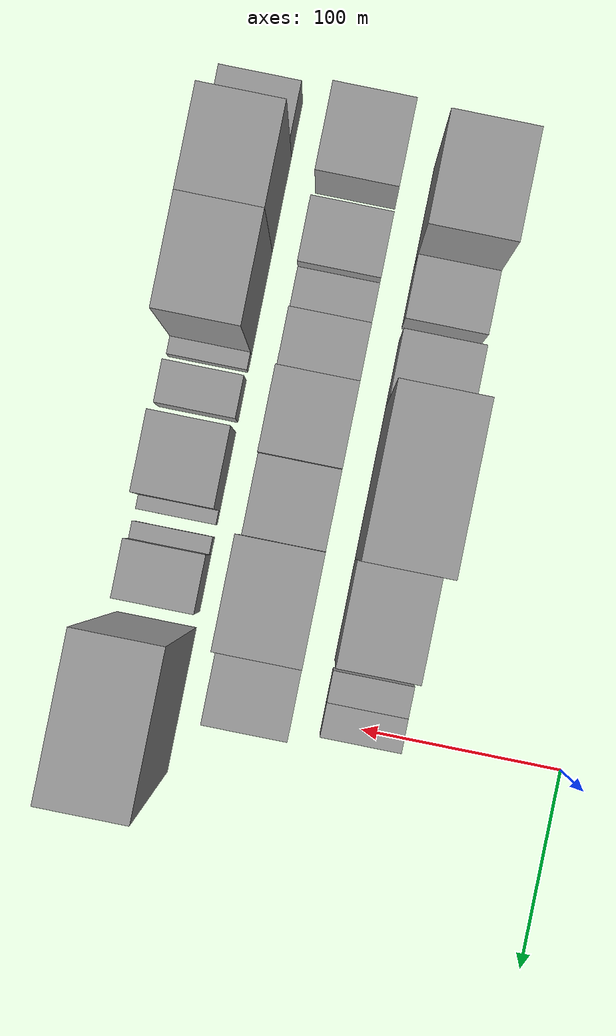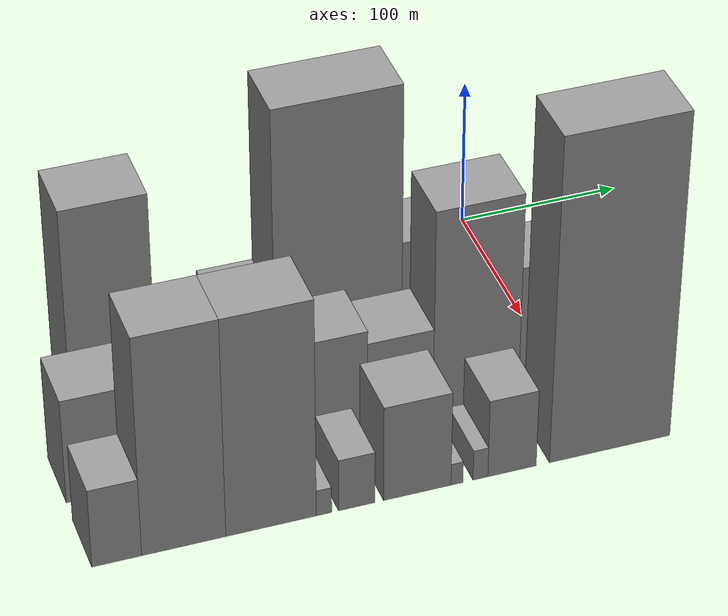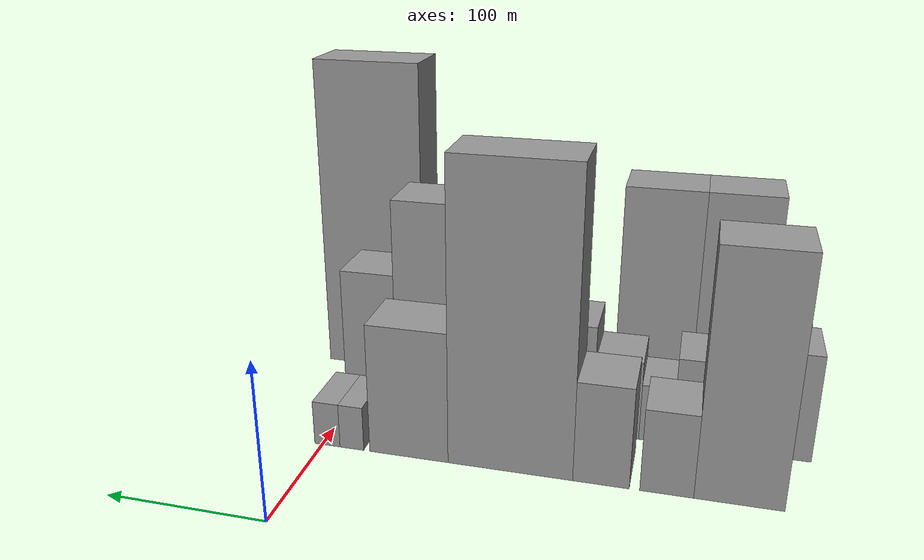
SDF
<sdf version="1.6">
 <world name="default">
  <model name="building_11">
   <static>1</static>
   <pose>100.0000 -253.8668 0 0.000000 0.000000 0.000000</pose>
   <link name="link">
    <pose>0 0 78.00 0 0 0</pose>
    <collision name="collision"><geometry><box><size>40.0000 50.2642 156.0000</size></box></geometry></collision>
    <visual name="visual">
     <cast_shadows>0</cast_shadows>
     <geometry><box><size>40.0000 50.2642 156.0000</size></box></geometry>
     <material>
      <script>
       <uri>model://grey_wall/materials/scripts</uri>
       <uri>model://grey_wall/materials/textures</uri>
       <name>vrc/grey_wall</name>
      </script>
     </material>
    </visual>
   </link>
  </model>
  <model name="building_12">
   <static>1</static>
   <pose>100.0000 -213.3457 0 0.000000 0.000000 0.000000</pose>
   <link name="link">
    <pose>0 0 27.00 0 0 0</pose>
    <collision name="collision"><geometry><box><size>40.0000 30.7780 54.0000</size></box></geometry></collision>
    <visual name="visual">
     <cast_shadows>0</cast_shadows>
     <geometry><box><size>40.0000 30.7780 54.0000</size></box></geometry>
     <material>
      <script>
       <uri>model://grey_wall/materials/scripts</uri>
       <uri>model://grey_wall/materials/textures</uri>
       <name>vrc/grey_wall</name>
      </script>
     </material>
    </visual>
   </link>
  </model>
  <model name="building_13">
   <static>1</static>
   <pose>100.0000 -175.3187 0 0.000000 0.000000 0.000000</pose>
   <link name="link">
    <pose>0 0 33.00 0 0 0</pose>
    <collision name="collision"><geometry><box><size>40.0000 33.2759 66.0000</size></box></geometry></collision>
    <visual name="visual">
     <cast_shadows>0</cast_shadows>
     <geometry><box><size>40.0000 33.2759 66.0000</size></box></geometry>
     <material>
      <script>
       <uri>model://grey_wall/materials/scripts</uri>
       <uri>model://grey_wall/materials/textures</uri>
       <name>vrc/grey_wall</name>
      </script>
     </material>
    </visual>
   </link>
  </model>
  <model name="building_14">
   <static>1</static>
   <pose>100.0000 -120.3680 0 0.000000 0.000000 0.000000</pose>
   <link name="link">
    <pose>0 0 97.50 0 0 0</pose>
    <collision name="collision"><geometry><box><size>40.0000 76.6255 195.0000</size></box></geometry></collision>
    <visual name="visual">
     <cast_shadows>0</cast_shadows>
     <geometry><box><size>40.0000 76.6255 195.0000</size></box></geometry>
     <material>
      <script>
       <uri>model://grey_wall/materials/scripts</uri>
       <uri>model://grey_wall/materials/textures</uri>
       <name>vrc/grey_wall</name>
      </script>
     </material>
    </visual>
   </link>
  </model>
  <model name="building_15">
   <static>1</static>
   <pose>100.0000 -56.7692 0 0.000000 0.000000 0.000000</pose>
   <link name="link">
    <pose>0 0 43.50 0 0 0</pose>
    <collision name="collision"><geometry><box><size>40.0000 50.5721 87.0000</size></box></geometry></collision>
    <visual name="visual">
     <cast_shadows>0</cast_shadows>
     <geometry><box><size>40.0000 50.5721 87.0000</size></box></geometry>
     <material>
      <script>
       <uri>model://grey_wall/materials/scripts</uri>
       <uri>model://grey_wall/materials/textures</uri>
       <name>vrc/grey_wall</name>
      </script>
     </material>
    </visual>
   </link>
  </model>
  <model name="building_16">
   <static>1</static>
   <pose>100.0000 -19.5867 0 0.000000 0.000000 0.000000</pose>
   <link name="link">
    <pose>0 0 15.00 0 0 0</pose>
    <collision name="collision"><geometry><box><size>40.0000 15.7928 30.0000</size></box></geometry></collision>
    <visual name="visual">
     <cast_shadows>0</cast_shadows>
     <geometry><box><size>40.0000 15.7928 30.0000</size></box></geometry>
     <material>
      <script>
       <uri>model://grey_wall/materials/scripts</uri>
       <uri>model://grey_wall/materials/textures</uri>
       <name>vrc/grey_wall</name>
      </script>
     </material>
    </visual>
   </link>
  </model>
  <model name="building_17">
   <static>1</static>
   <pose>100.0000 -3.1925 0 0.000000 0.000000 0.000000</pose>
   <link name="link">
    <pose>0 0 15.00 0 0 0</pose>
    <collision name="collision"><geometry><box><size>40.0000 16.9956 30.0000</size></box></geometry></collision>
    <visual name="visual">
     <cast_shadows>0</cast_shadows>
     <geometry><box><size>40.0000 16.9956 30.0000</size></box></geometry>
     <material>
      <script>
       <uri>model://grey_wall/materials/scripts</uri>
       <uri>model://grey_wall/materials/textures</uri>
       <name>vrc/grey_wall</name>
      </script>
     </material>
    </visual>
   </link>
  </model>
  <model name="building_41">
   <static>1</static>
   <pose>155.0000 -276.1485 0 0.000000 0.000000 0.000000</pose>
   <link name="link">
    <pose>0 0 36.00 0 0 0</pose>
    <collision name="collision"><geometry><box><size>40.0000 42.1129 72.0000</size></box></geometry></collision>
    <visual name="visual">
     <cast_shadows>0</cast_shadows>
     <geometry><box><size>40.0000 42.1129 72.0000</size></box></geometry>
     <material>
      <script>
       <uri>model://grey_wall/materials/scripts</uri>
       <uri>model://grey_wall/materials/textures</uri>
       <name>vrc/grey_wall</name>
      </script>
     </material>
    </visual>
   </link>
  </model>
  <model name="building_42">
   <static>1</static>
   <pose>155.0000 -229.2817 0 0.000000 0.000000 0.000000</pose>
   <link name="link">
    <pose>0 0 30.00 0 0 0</pose>
    <collision name="collision"><geometry><box><size>40.0000 31.6207 60.0000</size></box></geometry></collision>
    <visual name="visual">
     <cast_shadows>0</cast_shadows>
     <geometry><box><size>40.0000 31.6207 60.0000</size></box></geometry>
     <material>
      <script>
       <uri>model://grey_wall/materials/scripts</uri>
       <uri>model://grey_wall/materials/textures</uri>
       <name>vrc/grey_wall</name>
      </script>
     </material>
    </visual>
   </link>
  </model>
  <model name="building_43">
   <static>1</static>
   <pose>155.0000 -203.0780 0 0.000000 0.000000 0.000000</pose>
   <link name="link">
    <pose>0 0 19.50 0 0 0</pose>
    <collision name="collision"><geometry><box><size>40.0000 20.7868 39.0000</size></box></geometry></collision>
    <visual name="visual">
     <cast_shadows>0</cast_shadows>
     <geometry><box><size>40.0000 20.7868 39.0000</size></box></geometry>
     <material>
      <script>
       <uri>model://grey_wall/materials/scripts</uri>
       <uri>model://grey_wall/materials/textures</uri>
       <name>vrc/grey_wall</name>
      </script>
     </material>
    </visual>
   </link>
  </model>
  <model name="building_44">
   <static>1</static>
   <pose>155.0000 -177.9246 0 0.000000 0.000000 0.000000</pose>
   <link name="link">
    <pose>0 0 27.00 0 0 0</pose>
    <collision name="collision"><geometry><box><size>40.0000 29.5202 54.0000</size></box></geometry></collision>
    <visual name="visual">
     <cast_shadows>0</cast_shadows>
     <geometry><box><size>40.0000 29.5202 54.0000</size></box></geometry>
     <material>
      <script>
       <uri>model://grey_wall/materials/scripts</uri>
       <uri>model://grey_wall/materials/textures</uri>
       <name>vrc/grey_wall</name>
      </script>
     </material>
    </visual>
   </link>
  </model>
  <model name="building_45">
   <static>1</static>
   <pose>155.0000 -142.4565 0 0.000000 0.000000 0.000000</pose>
   <link name="link">
    <pose>0 0 37.50 0 0 0</pose>
    <collision name="collision"><geometry><box><size>40.0000 41.4160 75.0000</size></box></geometry></collision>
    <visual name="visual">
     <cast_shadows>0</cast_shadows>
     <geometry><box><size>40.0000 41.4160 75.0000</size></box></geometry>
     <material>
      <script>
       <uri>model://grey_wall/materials/scripts</uri>
       <uri>model://grey_wall/materials/textures</uri>
       <name>vrc/grey_wall</name>
      </script>
     </material>
    </visual>
   </link>
  </model>
  <model name="building_46">
   <static>1</static>
   <pose>155.0000 -102.2230 0 0.000000 0.000000 0.000000</pose>
   <link name="link">
    <pose>0 0 33.00 0 0 0</pose>
    <collision name="collision"><geometry><box><size>40.0000 39.0508 66.0000</size></box></geometry></collision>
    <visual name="visual">
     <cast_shadows>0</cast_shadows>
     <geometry><box><size>40.0000 39.0508 66.0000</size></box></geometry>
     <material>
      <script>
       <uri>model://grey_wall/materials/scripts</uri>
       <uri>model://grey_wall/materials/textures</uri>
       <name>vrc/grey_wall</name>
      </script>
     </material>
    </visual>
   </link>
  </model>
  <model name="building_47">
   <static>1</static>
   <pose>155.0000 -56.7826 0 0.000000 0.000000 0.000000</pose>
   <link name="link">
    <pose>0 0 73.50 0 0 0</pose>
    <collision name="collision"><geometry><box><size>40.0000 51.8300 147.0000</size></box></geometry></collision>
    <visual name="visual">
     <cast_shadows>0</cast_shadows>
     <geometry><box><size>40.0000 51.8300 147.0000</size></box></geometry>
     <material>
      <script>
       <uri>model://grey_wall/materials/scripts</uri>
       <uri>model://grey_wall/materials/textures</uri>
       <name>vrc/grey_wall</name>
      </script>
     </material>
    </visual>
   </link>
  </model>
  <model name="building_48">
   <static>1</static>
   <pose>155.0000 -12.8185 0 0.000000 0.000000 0.000000</pose>
   <link name="link">
    <pose>0 0 48.00 0 0 0</pose>
    <collision name="collision"><geometry><box><size>40.0000 36.0981 96.0000</size></box></geometry></collision>
    <visual name="visual">
     <cast_shadows>0</cast_shadows>
     <geometry><box><size>40.0000 36.0981 96.0000</size></box></geometry>
     <material>
      <script>
       <uri>model://grey_wall/materials/scripts</uri>
       <uri>model://grey_wall/materials/textures</uri>
       <name>vrc/grey_wall</name>
      </script>
     </material>
    </visual>
   </link>
  </model>
  <model name="building_75">
   <static>1</static>
   <pose>210.0000 -283.8153 0 0.000000 0.000000 0.000000</pose>
   <link name="link">
    <pose>0 0 27.00 0 0 0</pose>
    <collision name="collision"><geometry><box><size>40.0000 27.8063 54.0000</size></box></geometry></collision>
    <visual name="visual">
     <cast_shadows>0</cast_shadows>
     <geometry><box><size>40.0000 27.8063 54.0000</size></box></geometry>
     <material>
      <script>
       <uri>model://grey_wall/materials/scripts</uri>
       <uri>model://grey_wall/materials/textures</uri>
       <name>vrc/grey_wall</name>
      </script>
     </material>
    </visual>
   </link>
  </model>
  <model name="building_76">
   <static>1</static>
   <pose>210.0000 -246.1231 0 0.000000 0.000000 0.000000</pose>
   <link name="link">
    <pose>0 0 75.00 0 0 0</pose>
    <collision name="collision"><geometry><box><size>40.0000 47.5782 150.0000</size></box></geometry></collision>
    <visual name="visual">
     <cast_shadows>0</cast_shadows>
     <geometry><box><size>40.0000 47.5782 150.0000</size></box></geometry>
     <material>
      <script>
       <uri>model://grey_wall/materials/scripts</uri>
       <uri>model://grey_wall/materials/textures</uri>
       <name>vrc/grey_wall</name>
      </script>
     </material>
    </visual>
   </link>
  </model>
  <model name="building_77">
   <static>1</static>
   <pose>210.0000 -196.4227 0 0.000000 0.000000 0.000000</pose>
   <link name="link">
    <pose>0 0 75.00 0 0 0</pose>
    <collision name="collision"><geometry><box><size>40.0000 51.8225 150.0000</size></box></geometry></collision>
    <visual name="visual">
     <cast_shadows>0</cast_shadows>
     <geometry><box><size>40.0000 51.8225 150.0000</size></box></geometry>
     <material>
      <script>
       <uri>model://grey_wall/materials/scripts</uri>
       <uri>model://grey_wall/materials/textures</uri>
       <name>vrc/grey_wall</name>
      </script>
     </material>
    </visual>
   </link>
  </model>
  <model name="building_78">
   <static>1</static>
   <pose>210.0000 -166.0939 0 0.000000 0.000000 0.000000</pose>
   <link name="link">
    <pose>0 0 9.00 0 0 0</pose>
    <collision name="collision"><geometry><box><size>40.0000 8.8353 18.0000</size></box></geometry></collision>
    <visual name="visual">
     <cast_shadows>0</cast_shadows>
     <geometry><box><size>40.0000 8.8353 18.0000</size></box></geometry>
     <material>
      <script>
       <uri>model://grey_wall/materials/scripts</uri>
       <uri>model://grey_wall/materials/textures</uri>
       <name>vrc/grey_wall</name>
      </script>
     </material>
    </visual>
   </link>
  </model>
  <model name="building_79">
   <static>1</static>
   <pose>210.0000 -147.1011 0 0.000000 0.000000 0.000000</pose>
   <link name="link">
    <pose>0 0 18.00 0 0 0</pose>
    <collision name="collision"><geometry><box><size>40.0000 21.1502 36.0000</size></box></geometry></collision>
    <visual name="visual">
     <cast_shadows>0</cast_shadows>
     <geometry><box><size>40.0000 21.1502 36.0000</size></box></geometry>
     <material>
      <script>
       <uri>model://grey_wall/materials/scripts</uri>
       <uri>model://grey_wall/materials/textures</uri>
       <name>vrc/grey_wall</name>
      </script>
     </material>
    </visual>
   </link>
  </model>
  <model name="building_80">
   <static>1</static>
   <pose>210.0000 -111.7602 0 0.000000 0.000000 0.000000</pose>
   <link name="link">
    <pose>0 0 33.00 0 0 0</pose>
    <collision name="collision"><geometry><box><size>40.0000 39.5315 66.0000</size></box></geometry></collision>
    <visual name="visual">
     <cast_shadows>0</cast_shadows>
     <geometry><box><size>40.0000 39.5315 66.0000</size></box></geometry>
     <material>
      <script>
       <uri>model://grey_wall/materials/scripts</uri>
       <uri>model://grey_wall/materials/textures</uri>
       <name>vrc/grey_wall</name>
      </script>
     </material>
    </visual>
   </link>
  </model>
  <model name="building_81">
   <static>1</static>
   <pose>210.0000 -88.4460 0 0.000000 0.000000 0.000000</pose>
   <link name="link">
    <pose>0 0 7.50 0 0 0</pose>
    <collision name="collision"><geometry><box><size>40.0000 7.0969 15.0000</size></box></geometry></collision>
    <visual name="visual">
     <cast_shadows>0</cast_shadows>
     <geometry><box><size>40.0000 7.0969 15.0000</size></box></geometry>
     <material>
      <script>
       <uri>model://grey_wall/materials/scripts</uri>
       <uri>model://grey_wall/materials/textures</uri>
       <name>vrc/grey_wall</name>
      </script>
     </material>
    </visual>
   </link>
  </model>
  <model name="building_82">
   <static>1</static>
   <pose>210.0000 -74.5201 0 0.000000 0.000000 0.000000</pose>
   <link name="link">
    <pose>0 0 10.50 0 0 0</pose>
    <collision name="collision"><geometry><box><size>40.0000 8.7549 21.0000</size></box></geometry></collision>
    <visual name="visual">
     <cast_shadows>0</cast_shadows>
     <geometry><box><size>40.0000 8.7549 21.0000</size></box></geometry>
     <material>
      <script>
       <uri>model://grey_wall/materials/scripts</uri>
       <uri>model://grey_wall/materials/textures</uri>
       <name>vrc/grey_wall</name>
      </script>
     </material>
    </visual>
   </link>
  </model>
  <model name="building_83">
   <static>1</static>
   <pose>210.0000 -55.7475 0 0.000000 0.000000 0.000000</pose>
   <link name="link">
    <pose>0 0 27.00 0 0 0</pose>
    <collision name="collision"><geometry><box><size>40.0000 28.7904 54.0000</size></box></geometry></collision>
    <visual name="visual">
     <cast_shadows>0</cast_shadows>
     <geometry><box><size>40.0000 28.7904 54.0000</size></box></geometry>
     <material>
      <script>
       <uri>model://grey_wall/materials/scripts</uri>
       <uri>model://grey_wall/materials/textures</uri>
       <name>vrc/grey_wall</name>
      </script>
     </material>
    </visual>
   </link>
  </model>
  <model name="building_84">
   <static>1</static>
   <pose>210.0000 3.0683 0 0.000000 0.000000 0.000000</pose>
   <link name="link">
    <pose>0 0 111.00 0 0 0</pose>
    <collision name="collision"><geometry><box><size>40.0000 72.8411 222.0000</size></box></geometry></collision>
    <visual name="visual">
     <cast_shadows>0</cast_shadows>
     <geometry><box><size>40.0000 72.8411 222.0000</size></box></geometry>
     <material>
      <script>
       <uri>model://grey_wall/materials/scripts</uri>
       <uri>model://grey_wall/materials/textures</uri>
       <name>vrc/grey_wall</name>
      </script>
     </material>
    </visual>
   </link>
  </model>
 </world>
</sdf>
